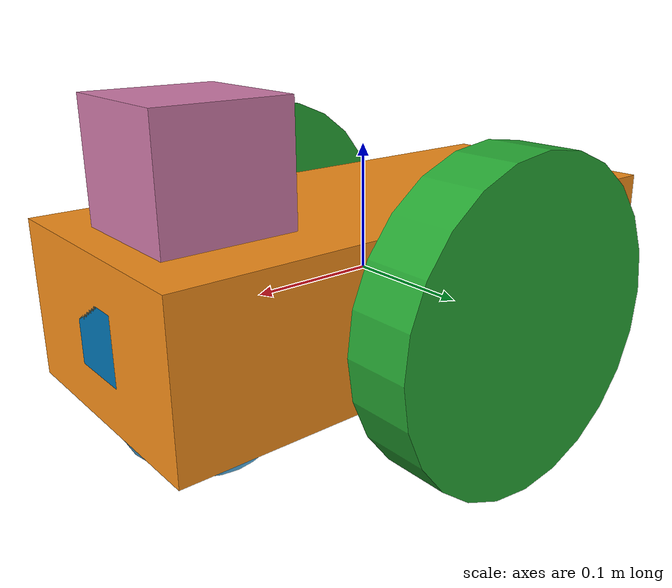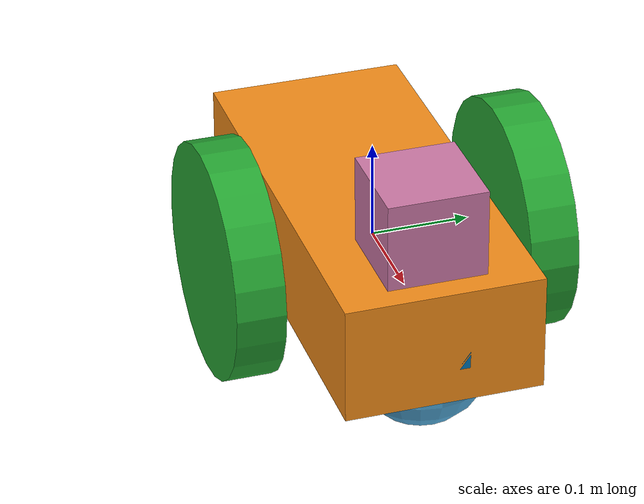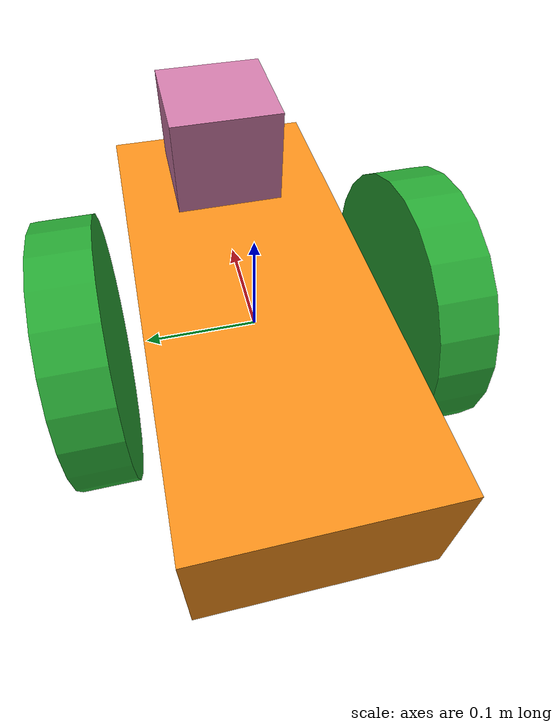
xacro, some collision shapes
<?xml version='1.0'?>

<robot name="my_robot" xmlns:xacro="http://www.ros.org/wiki/xacro">
<xacro:include filename="$(find my_robot)/urdf/my_robot.gazebo" />
<xacro:include filename="$(find my_robot)/urdf/materials.xacro" />

  <link name="robot_footprint"></link>

  <joint name="robot_footprint_joint" type="fixed">
    <origin xyz="0 0 0" rpy="0 0 0" />
    <parent link="robot_footprint"/>
    <child link="chassis" />
  </joint>

  <link name='chassis'>
    <pose>0 0 0.1 0 0 0</pose>

    <inertial>
      <mass value="15.0"/>
      <origin xyz="0.0 0 0" rpy=" 0 0 0"/>
      <inertia
          ixx="0.1" ixy="0" ixz="0"
          iyy="0.1" iyz="0"
          izz="0.1"
      />
    </inertial>

    <collision name='collision'>
      <origin xyz="0 0 0" rpy=" 0 0 0"/>
      <geometry>
        <box size=".45 .2 .12"/>
      </geometry>
    </collision>

    <visual name='chassis_visual'>
      <origin xyz="0 0 0" rpy=" 0 0 0"/>
      <geometry>
        <box size=".45 .2 .12"/>
      </geometry>
      <material name="orange"/>
     </visual>

    <collision name='back_caster_collision'>
      <origin xyz="-0.15 0 -0.05" rpy=" 0 0 0"/>
      <geometry>
        <sphere radius="0.0699"/>
      </geometry>
    </collision>

    <visual name='back_caster_visual'>
      <origin xyz="-0.15 0 -0.05" rpy=" 0 0 0"/>
      <geometry>
        <sphere radius="0.07"/>
      </geometry>
    </visual>

    <collision name='front_caster_collision'>
      <origin xyz="0.15 0 -0.05" rpy=" 0 0 0"/>
      <geometry>
        <sphere radius="0.0699"/>
      </geometry>
    </collision>

    <visual name='front_caster_visual'>
      <origin xyz="0.15 0 -0.05" rpy=" 0 0 0"/>
      <geometry>
        <sphere radius="0.07"/>
      </geometry>
    </visual>

  </link>

  <link name='left_wheel'>
    <collision>
      <geometry>
        <cylinder length="0.05" radius="0.12"/>
      </geometry>
      <origin rpy="0 1.5707 1.5707" xyz="0 0 0"/>
    </collision>

    <inertial>
      <mass value="5"/>
      <inertia ixx="0.1" ixy="0.0" ixz="0.0" iyy="0.1" iyz="0.0" izz="0.1"/>
    </inertial>

    <visual>
      <geometry>
        <cylinder length="0.05" radius="0.12"/>
      </geometry>
      <origin rpy="0 1.5707 1.5707" xyz="0 0 0"/>
      <material name="green"/>
    </visual>
  </link>

  <joint type="continuous" name="left_wheel_hinge">
    <origin xyz="0 0.15 0" rpy="0 0 0"/>
    <child link="left_wheel"/>
    <parent link="chassis"/>
    <axis xyz="0 1 0" rpy="0 0 0"/>
    <limit effort="10000" velocity="1000"/>
    <dynamics damping="1.0" friction="1.0"/>
  </joint>

  <link name='right_wheel'>
    <collision>
      <geometry>
        <cylinder length="0.05" radius="0.12"/>
      </geometry>
      <origin rpy="0 1.5707 1.5707" xyz="0 -0.3 0"/>
    </collision>

    <inertial>
      <mass value="5"/>
      <inertia ixx="0.1" ixy="0.0" ixz="0.0" iyy="0.1" iyz="0.0" izz="0.1"/>
    </inertial>

    <visual>
      <geometry>
        <cylinder length="0.05" radius="0.12"/>
      </geometry>
      <origin rpy="0 1.5707 1.5707" xyz="0 -0.3 0"/>
      <material name="green"/>
    </visual>
  </link>

  <joint type="continuous" name="right_wheel_hinge">
    <origin xyz="0 0.15 0" rpy="0 0 0"/>
    <child link="right_wheel"/>
    <parent link="chassis"/>
    <axis xyz="0 1 0" rpy="0 0 0"/>
    <limit effort="10000" velocity="1000"/>
    <dynamics damping="1.0" friction="1.0"/>
  </joint>

  <link name="camera">
    <visual>
      <geometry>
        <box size="0.05 0.05 0.05"/>
      </geometry>
      <origin rpy="0 0 0" xyz="0 0 0"/>
    </visual>

    <collision>
      <geometry>
        <box size="0.05 0.05 0.05"/>
      </geometry>
      <origin rpy="0 0 0" xyz="0 0 0"/>
    </collision>

    <inertial>
      <origin xyz="0.05 0.05 0.05"/>
      <mass value="0.1"/>
      <inertia ixx="1e-6" ixy="0.0" ixz="0.0" iyy="1e-6" iyz="0.0" izz="1e-6"/>
    </inertial>

  </link>

  <joint name="camera_joint" type="fixed">
    <parent link="chassis"/>
    <child link="camera"/>
    <origin rpy="0 0 0" xyz="0.2 0 0"/>
    <axis xyz="0 1 0" />
  </joint>

  <joint name="camera_optical_joint" type="fixed">
    <origin xyz="0 0 0" rpy="-1.5707 0 -1.5707"/>
    <parent link="camera"/>
    <child link="camera_link_optical"/>
  </joint>

  <link name="camera_link_optical">
  </link>

  <link name="hokuyo">
    <visual>
      <geometry>
        <mesh filename="package://my_robot/meshes/hokuyo.dae"/>
      </geometry>
      <origin rpy="0 0 0" xyz="0 0 0"/>
    </visual>

    <collision>
      <geometry>
        <box size="0.1 0.1 0.1"/>
      </geometry>
      <origin rpy="0 0 0" xyz="0 0 0"/>
    </collision>

    <inertial>
      <mass value="1e-5"/>
      <inertia ixx="1e-6" ixy="0.0" ixz="0.0" iyy="1e-6" iyz="0.0" izz="1e-6"/>
    </inertial>

  </link>

  <joint name="hokuyo_joint" type="fixed">
    <parent link="chassis"/>
    <child link="hokuyo"/>
    <origin rpy="0 0 0" xyz="0.15 0 0.1"/>
    <axis xyz="0 1 0" />
  </joint>

</robot>
